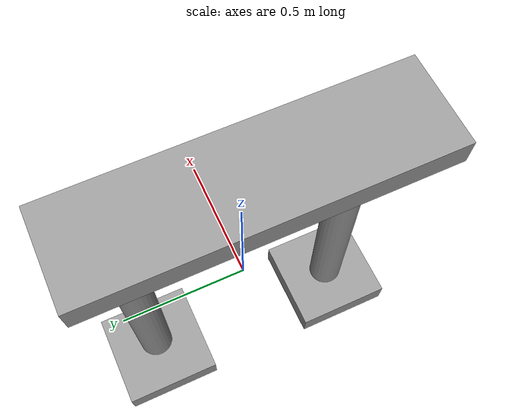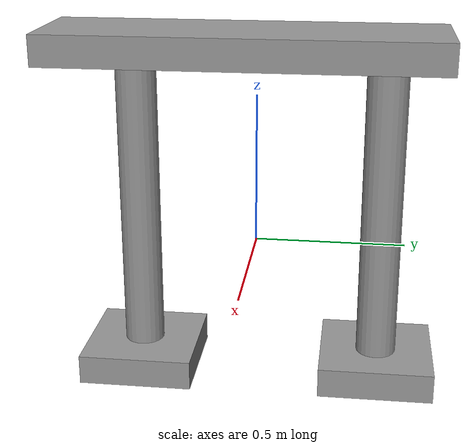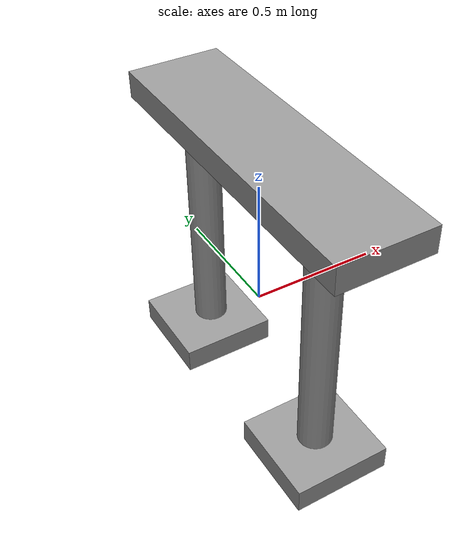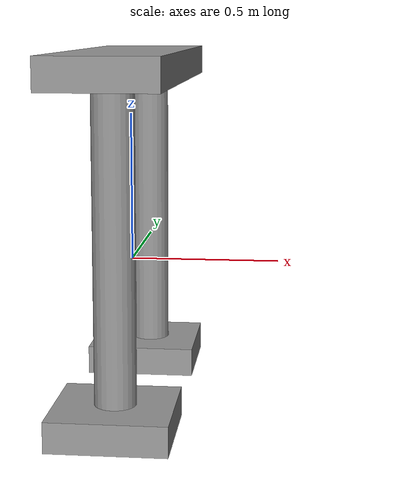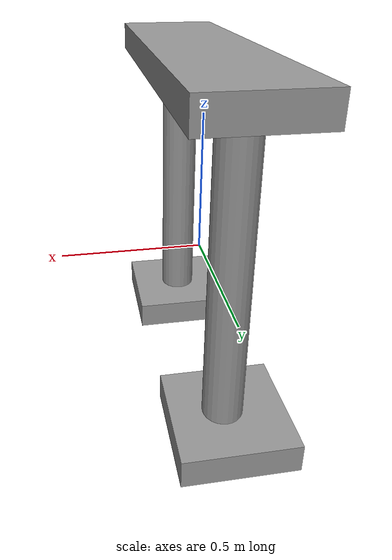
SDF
<?xml version='1.0'?>
<sdf version='1.6'>
  <model name='HumanoidRobot'>
    <link name='link_0'>
      <pose frame=''>-0.001742 -0.400188 -0.44029 0 -0 0</pose>
      <inertial>
        <mass>0.0203363</mass>
        <inertia>
          <ixx>0.00028289</ixx>
          <ixy>0</ixy>
          <ixz>0</ixz>
          <iyy>0.00028426</iyy>
          <iyz>0</iyz>
          <izz>0.00050367</izz>
        </inertia>
        <pose frame=''>0 0 0 0 -0 0</pose>
      </inertial>
      <gravity>1</gravity>
      <self_collide>0</self_collide>
      <kinematic>0</kinematic>
      <visual name='visual'>
        <pose frame=''>0 0 0 0 -0 0</pose>
        <geometry>
          <box>
            <size>0.386013 0.384966 0.1</size>
          </box>
        </geometry>
        <material>
          <lighting>1</lighting>
          <script>
            <uri>file://media/materials/scripts/gazebo.material</uri>
            <name>Gazebo/Grey</name>
          </script>
          <ambient>0.3 0.3 0.3 1</ambient>
          <diffuse>0.7 0.7 0.7 1</diffuse>
          <specular>0.01 0.01 0.01 1</specular>
          <emissive>0 0 0 1</emissive>
          <shader type='vertex'>
            <normal_map>__default__</normal_map>
          </shader>
        </material>
        <transparency>0</transparency>
        <cast_shadows>1</cast_shadows>
      </visual>
      <collision name='collision'>
        <laser_retro>0</laser_retro>
        <max_contacts>10</max_contacts>
        <pose frame=''>0 0 0 0 -0 0</pose>
        <geometry>
          <box>
            <size>0.386013 0.384966 0.1</size>
          </box>
        </geometry>
        <surface>
          <friction>
            <ode>
              <mu>1</mu>
              <mu2>1</mu2>
              <fdir1>0 0 0</fdir1>
              <slip1>0</slip1>
              <slip2>0</slip2>
            </ode>
            <torsional>
              <coefficient>1</coefficient>
              <patch_radius>0</patch_radius>
              <surface_radius>0</surface_radius>
              <use_patch_radius>1</use_patch_radius>
              <ode>
                <slip>0</slip>
              </ode>
            </torsional>
          </friction>
          <bounce>
            <restitution_coefficient>0</restitution_coefficient>
            <threshold>1e+06</threshold>
          </bounce>
          <contact>
            <collide_without_contact>0</collide_without_contact>
            <collide_without_contact_bitmask>1</collide_without_contact_bitmask>
            <collide_bitmask>1</collide_bitmask>
            <ode>
              <soft_cfm>0</soft_cfm>
              <soft_erp>0.2</soft_erp>
              <kp>1e+13</kp>
              <kd>1</kd>
              <max_vel>0.01</max_vel>
              <min_depth>0</min_depth>
            </ode>
            <bullet>
              <split_impulse>1</split_impulse>
              <split_impulse_penetration_threshold>-0.01</split_impulse_penetration_threshold>
              <soft_cfm>0</soft_cfm>
              <soft_erp>0.2</soft_erp>
              <kp>1e+13</kp>
              <kd>1</kd>
            </bullet>
          </contact>
        </surface>
      </collision>
    </link>
    <link name='link_0_clone'>
      <pose frame=''>-0.009352 0.420654 -0.44029 0 -0 0</pose>
      <inertial>
        <mass>0.040911</mass>
        <inertia>
          <ixx>0.00108927</ixx>
          <ixy>0</ixy>
          <ixz>0</ixz>
          <iyy>0.00107684</iyy>
          <iyz>0</iyz>
          <izz>0.00203841</izz>
        </inertia>
        <pose frame=''>0 0 0 0 -0 0</pose>
      </inertial>
      <self_collide>0</self_collide>
      <kinematic>0</kinematic>
      <gravity>1</gravity>
      <visual name='visual'>
        <pose frame=''>0 0 0 0 -0 0</pose>
        <geometry>
          <box>
            <size>0.386013 0.384966 0.1</size>
          </box>
        </geometry>
        <material>
          <lighting>1</lighting>
          <script>
            <uri>file://media/materials/scripts/gazebo.material</uri>
            <name>Gazebo/Grey</name>
          </script>
          <ambient>0.3 0.3 0.3 1</ambient>
          <diffuse>0.7 0.7 0.7 1</diffuse>
          <specular>0.01 0.01 0.01 1</specular>
          <emissive>0 0 0 1</emissive>
          <shader type='vertex'>
            <normal_map>__default__</normal_map>
          </shader>
        </material>
        <transparency>0</transparency>
        <cast_shadows>1</cast_shadows>
      </visual>
      <collision name='collision'>
        <laser_retro>0</laser_retro>
        <max_contacts>10</max_contacts>
        <pose frame=''>0 0 0 0 -0 0</pose>
        <geometry>
          <box>
            <size>0.386013 0.384966 0.1</size>
          </box>
        </geometry>
        <surface>
          <friction>
            <ode>
              <mu>1</mu>
              <mu2>1</mu2>
              <fdir1>0 0 0</fdir1>
              <slip1>0</slip1>
              <slip2>0</slip2>
            </ode>
            <torsional>
              <coefficient>1</coefficient>
              <patch_radius>0</patch_radius>
              <surface_radius>0</surface_radius>
              <use_patch_radius>1</use_patch_radius>
              <ode>
                <slip>0</slip>
              </ode>
            </torsional>
          </friction>
          <bounce>
            <restitution_coefficient>0</restitution_coefficient>
            <threshold>1e+06</threshold>
          </bounce>
          <contact>
            <collide_without_contact>0</collide_without_contact>
            <collide_without_contact_bitmask>1</collide_without_contact_bitmask>
            <collide_bitmask>1</collide_bitmask>
            <ode>
              <soft_cfm>0</soft_cfm>
              <soft_erp>0.2</soft_erp>
              <kp>1e+13</kp>
              <kd>1</kd>
              <max_vel>0.01</max_vel>
              <min_depth>0</min_depth>
            </ode>
            <bullet>
              <split_impulse>1</split_impulse>
              <split_impulse_penetration_threshold>-0.01</split_impulse_penetration_threshold>
              <soft_cfm>0</soft_cfm>
              <soft_erp>0.2</soft_erp>
              <kp>1e+13</kp>
              <kd>1</kd>
            </bullet>
          </contact>
        </surface>
      </collision>
    </link>
    <link name='link_1'>
      <pose frame=''>0.001004 -0.400243 0.10971 0 -0 0</pose>
      <inertial>
        <mass>0.0183958</mass>
        <inertia>
          <ixx>0.00157191</ixx>
          <ixy>0</ixy>
          <ixz>0</ixz>
          <iyy>0.00157191</iyy>
          <iyz>0</iyz>
          <izz>4.206e-05</izz>
        </inertia>
        <pose frame=''>0 0 0 0 -0 0</pose>
      </inertial>
      <gravity>1</gravity>
      <self_collide>0</self_collide>
      <kinematic>0</kinematic>
      <visual name='visual'>
        <pose frame=''>0 0 0 0 -0 0</pose>
        <geometry>
          <cylinder>
            <radius>0.067614</radius>
            <length>1</length>
          </cylinder>
        </geometry>
        <material>
          <lighting>1</lighting>
          <script>
            <uri>file://media/materials/scripts/gazebo.material</uri>
            <name>Gazebo/Grey</name>
          </script>
          <ambient>0.3 0.3 0.3 1</ambient>
          <diffuse>0.7 0.7 0.7 1</diffuse>
          <specular>0.01 0.01 0.01 1</specular>
          <emissive>0 0 0 1</emissive>
          <shader type='vertex'>
            <normal_map>__default__</normal_map>
          </shader>
        </material>
        <transparency>0</transparency>
        <cast_shadows>1</cast_shadows>
      </visual>
      <collision name='collision'>
        <laser_retro>0</laser_retro>
        <max_contacts>10</max_contacts>
        <pose frame=''>0 0 0 0 -0 0</pose>
        <geometry>
          <cylinder>
            <radius>0.067614</radius>
            <length>1.00582</length>
          </cylinder>
        </geometry>
        <surface>
          <friction>
            <ode>
              <mu>1</mu>
              <mu2>1</mu2>
              <fdir1>0 0 0</fdir1>
              <slip1>0</slip1>
              <slip2>0</slip2>
            </ode>
            <torsional>
              <coefficient>1</coefficient>
              <patch_radius>0</patch_radius>
              <surface_radius>0</surface_radius>
              <use_patch_radius>1</use_patch_radius>
              <ode>
                <slip>0</slip>
              </ode>
            </torsional>
          </friction>
          <bounce>
            <restitution_coefficient>0</restitution_coefficient>
            <threshold>1e+06</threshold>
          </bounce>
          <contact>
            <collide_without_contact>0</collide_without_contact>
            <collide_without_contact_bitmask>1</collide_without_contact_bitmask>
            <collide_bitmask>1</collide_bitmask>
            <ode>
              <soft_cfm>0</soft_cfm>
              <soft_erp>0.2</soft_erp>
              <kp>1e+13</kp>
              <kd>1</kd>
              <max_vel>0.01</max_vel>
              <min_depth>0</min_depth>
            </ode>
            <bullet>
              <split_impulse>1</split_impulse>
              <split_impulse_penetration_threshold>-0.01</split_impulse_penetration_threshold>
              <soft_cfm>0</soft_cfm>
              <soft_erp>0.2</soft_erp>
              <kp>1e+13</kp>
              <kd>1</kd>
            </bullet>
          </contact>
        </surface>
      </collision>
    </link>
    <link name='link_1_clone'>
      <pose frame=''>0.007204 0.419325 0.10971 0 -0 0</pose>
      <inertial>
        <mass>0.0183958</mass>
        <inertia>
          <ixx>0.00157191</ixx>
          <ixy>0</ixy>
          <ixz>0</ixz>
          <iyy>0.00157191</iyy>
          <iyz>0</iyz>
          <izz>4.206e-05</izz>
        </inertia>
        <pose frame=''>0 0 0 0 -0 0</pose>
      </inertial>
      <self_collide>0</self_collide>
      <kinematic>0</kinematic>
      <visual name='visual'>
        <pose frame=''>0 0 0 0 -0 0</pose>
        <geometry>
          <cylinder>
            <radius>0.067614</radius>
            <length>1</length>
          </cylinder>
        </geometry>
        <material>
          <lighting>1</lighting>
          <script>
            <uri>file://media/materials/scripts/gazebo.material</uri>
            <name>Gazebo/Grey</name>
          </script>
          <ambient>0.3 0.3 0.3 1</ambient>
          <diffuse>0.7 0.7 0.7 1</diffuse>
          <specular>0.01 0.01 0.01 1</specular>
          <emissive>0 0 0 1</emissive>
          <shader type='vertex'>
            <normal_map>__default__</normal_map>
          </shader>
        </material>
        <transparency>0</transparency>
        <cast_shadows>1</cast_shadows>
      </visual>
      <collision name='collision'>
        <laser_retro>0</laser_retro>
        <max_contacts>10</max_contacts>
        <pose frame=''>0 0 0 0 -0 0</pose>
        <geometry>
          <cylinder>
            <radius>0.067614</radius>
            <length>1.00582</length>
          </cylinder>
        </geometry>
        <surface>
          <friction>
            <ode>
              <mu>1</mu>
              <mu2>1</mu2>
              <fdir1>0 0 0</fdir1>
              <slip1>0</slip1>
              <slip2>0</slip2>
            </ode>
            <torsional>
              <coefficient>1</coefficient>
              <patch_radius>0</patch_radius>
              <surface_radius>0</surface_radius>
              <use_patch_radius>1</use_patch_radius>
              <ode>
                <slip>0</slip>
              </ode>
            </torsional>
          </friction>
          <bounce>
            <restitution_coefficient>0</restitution_coefficient>
            <threshold>1e+06</threshold>
          </bounce>
          <contact>
            <collide_without_contact>0</collide_without_contact>
            <collide_without_contact_bitmask>1</collide_without_contact_bitmask>
            <collide_bitmask>1</collide_bitmask>
            <ode>
              <soft_cfm>0</soft_cfm>
              <soft_erp>0.2</soft_erp>
              <kp>1e+13</kp>
              <kd>1</kd>
              <max_vel>0.01</max_vel>
              <min_depth>0</min_depth>
            </ode>
            <bullet>
              <split_impulse>1</split_impulse>
              <split_impulse_penetration_threshold>-0.01</split_impulse_penetration_threshold>
              <soft_cfm>0</soft_cfm>
              <soft_erp>0.2</soft_erp>
              <kp>1e+13</kp>
              <kd>1</kd>
            </bullet>
          </contact>
        </surface>
      </collision>
    </link>
    <link name='link_2'>
      <pose frame=''>0.002881 -0.039829 0.661164 0 -0 0</pose>
      <inertial>
        <mass>0.0490457</mass>
        <inertia>
          <ixx>0.00704722</ixx>
          <ixy>0</ixy>
          <ixz>0</ixz>
          <iyy>0.000586002</iyy>
          <iyz>0</iyz>
          <izz>0.00754682</izz>
        </inertia>
        <pose frame=''>0 0 0 0 -0 0</pose>
      </inertial>
      <visual name='visual'>
        <pose frame=''>0 0 0 0 -0 0</pose>
        <geometry>
          <box>
            <size>0.36443 1.30907 0.102813</size>
          </box>
        </geometry>
        <material>
          <lighting>1</lighting>
          <script>
            <uri>file://media/materials/scripts/gazebo.material</uri>
            <name>Gazebo/Grey</name>
          </script>
          <ambient>0.3 0.3 0.3 1</ambient>
          <diffuse>0.7 0.7 0.7 1</diffuse>
          <specular>0.01 0.01 0.01 1</specular>
          <emissive>0 0 0 1</emissive>
        </material>
        <transparency>0</transparency>
        <cast_shadows>1</cast_shadows>
      </visual>
      <collision name='collision'>
        <laser_retro>0</laser_retro>
        <max_contacts>10</max_contacts>
        <pose frame=''>0 0 0 0 -0 0</pose>
        <geometry>
          <box>
            <size>0.36443 1.30907 0.102813</size>
          </box>
        </geometry>
        <surface>
          <friction>
            <ode>
              <mu>1</mu>
              <mu2>1</mu2>
              <fdir1>0 0 0</fdir1>
              <slip1>0</slip1>
              <slip2>0</slip2>
            </ode>
            <torsional>
              <coefficient>1</coefficient>
              <patch_radius>0</patch_radius>
              <surface_radius>0</surface_radius>
              <use_patch_radius>1</use_patch_radius>
              <ode>
                <slip>0</slip>
              </ode>
            </torsional>
          </friction>
          <bounce>
            <restitution_coefficient>0</restitution_coefficient>
            <threshold>1e+06</threshold>
          </bounce>
          <contact>
            <collide_without_contact>0</collide_without_contact>
            <collide_without_contact_bitmask>1</collide_without_contact_bitmask>
            <collide_bitmask>1</collide_bitmask>
            <ode>
              <soft_cfm>0</soft_cfm>
              <soft_erp>0.2</soft_erp>
              <kp>1e+13</kp>
              <kd>1</kd>
              <max_vel>0.01</max_vel>
              <min_depth>0</min_depth>
            </ode>
            <bullet>
              <split_impulse>1</split_impulse>
              <split_impulse_penetration_threshold>-0.01</split_impulse_penetration_threshold>
              <soft_cfm>0</soft_cfm>
              <soft_erp>0.2</soft_erp>
              <kp>1e+13</kp>
              <kd>1</kd>
            </bullet>
          </contact>
        </surface>
      </collision>
    </link>
    <joint name='link_0_JOINT_0' type='fixed'>
      <parent>link_0</parent>
      <child>link_1</child>
      <pose frame=''>0 0 0 0 -0 0</pose>
      <physics>
        <ode>
          <limit>
            <cfm>0</cfm>
            <erp>0.2</erp>
          </limit>
          <suspension>
            <cfm>0</cfm>
            <erp>0.2</erp>
          </suspension>
        </ode>
      </physics>
    </joint>
    <joint name='link_0_clone_JOINT_1' type='fixed'>
      <parent>link_0_clone</parent>
      <child>link_1_clone</child>
      <pose frame=''>0 0 0 0 -0 0</pose>
      <physics>
        <ode>
          <limit>
            <cfm>0</cfm>
            <erp>0.2</erp>
          </limit>
          <suspension>
            <cfm>0</cfm>
            <erp>0.2</erp>
          </suspension>
        </ode>
      </physics>
    </joint>
    <joint name='link_2_JOINT_2' type='fixed'>
      <parent>link_2</parent>
      <child>link_1</child>
      <pose frame=''>0 0 0 0 -0 0</pose>
      <physics>
        <ode>
          <limit>
            <cfm>0</cfm>
            <erp>0.2</erp>
          </limit>
          <suspension>
            <cfm>0</cfm>
            <erp>0.2</erp>
          </suspension>
        </ode>
      </physics>
    </joint>
    <joint name='link_2_JOINT_3' type='fixed'>
      <parent>link_2</parent>
      <child>link_1_clone</child>
      <pose frame=''>0 0 0 0 -0 0</pose>
      <physics>
        <ode>
          <limit>
            <cfm>0</cfm>
            <erp>0.2</erp>
          </limit>
          <suspension>
            <cfm>0</cfm>
            <erp>0.2</erp>
          </suspension>
        </ode>
      </physics>
    </joint>
    <static>0</static>
    <allow_auto_disable>1</allow_auto_disable>
  </model>
</sdf>
